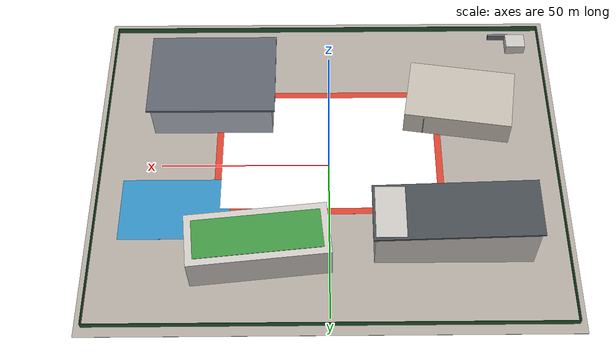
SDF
<?xml version="1.0" ?>
<sdf version="1.8">
  <model name="guanpu_elementary_school">
    <static>true</static>
    <link name="school_link">

      <!-- ==================== 物理碰撞剛體 (校舍主體、體育館與校門守衛室) ==================== -->
      <!-- 教學大樓 A 棟 (4層樓, 45m x 16m x 15m) -->
      <collision name="bldg_a_col">
        <pose>-35.0 25.0 7.5 0 0 0</pose>
        <geometry><box><size>45.0 16.0 15.0</size></box></geometry>
      </collision>

      <!-- 教學大樓 B 棟 (3層樓, 40m x 16m x 12m) -->
      <collision name="bldg_b_col">
        <pose>20.0 30.0 6.0 0 0 0.1</pose>
        <geometry><box><size>40.0 16.0 12.0</size></box></geometry>
      </collision>

      <!-- 行政圖書資訊中心 (2層樓有機聚落, 32m x 20m x 8.5m) -->
      <collision name="admin_lib_col">
        <pose>-40.0 -20.0 4.25 0 0 -0.15</pose>
        <geometry><box><size>32.0 20.0 8.5</size></box></geometry>
      </collision>

      <!-- 多功能活動中心 / 室內體育館 (挑高12m, 36m x 26m x 12m) -->
      <collision name="gym_col">
        <pose>35.0 -25.0 6.0 0 0 0</pose>
        <geometry><box><size>36.0 26.0 12.0</size></box></geometry>
      </collision>

      <!-- 校門警衛傳達室 (1層樓, 6m x 5m x 3.5m) -->
      <collision name="gatehouse_col">
        <pose>-60.0 -45.0 1.75 0 0 0</pose>
        <geometry><box><size>6.0 5.0 3.5</size></box></geometry>
      </collision>

      <!-- ==================== 校園大底地坪 (Campus Ground Surface 140m x 110m) ==================== -->
      <visual name="campus_ground_vis">
        <pose>0 0 0.04 0 0 0</pose>
        <geometry><box><size>140.0 110.0 0.08</size></box></geometry>
        <material>
          <ambient>0.60 0.58 0.55 1</ambient>
          <diffuse>0.68 0.65 0.62 1</diffuse>
        </material>
      </visual>

      <!-- ==================== 操場運動場與跑道系統 (200m Athletic Track & Field) ==================== -->
      <!-- 200m 紅色 PU 橢圓跑道區 (Red Tartan Running Track: 65m x 42m) -->
      <visual name="track_oval_vis">
        <pose>0 -5.0 0.085 0 0 0</pose>
        <geometry><box><size>68.0 44.0 0.01</size></box></geometry>
        <material>
          <ambient>0.75 0.20 0.15 1</ambient>
          <diffuse>0.85 0.25 0.18 1</diffuse>
        </material>
      </visual>

      <!-- 操場中央天然草皮足球場/多功能活動草坪 (Center Grass Lawn: 52m x 28m) -->
      <visual name="center_pitch_vis">
        <pose>0 -5.0 0.092 0 0 0</pose>
        <geometry><box><size>52.0 28.0 0.01</size></box></geometry>
        <material>
          <ambient>0.18 0.58 0.22 1</ambient>
          <diffuse>0.22 0.65 0.25 1</diffuse>
        </material>
      </visual>

      <!-- 跑道白色分道標線 (White Lane Striping) -->
      <visual name="track_line_outer">
        <pose>0 -5.0 0.095 0 0 0</pose>
        <geometry><box><size>64.0 40.0 0.005</size></box></geometry>
        <material><ambient>0.95 0.95 0.95 1</ambient><diffuse>0.98 0.98 0.98 1</diffuse></material>
      </visual>

      <!-- 戶外綜合籃球與排球場 (Outdoor Courts: 32m x 20m 藍綠雙色抗磨面層) -->
      <visual name="court_vis">
        <pose>45.0 15.0 0.085 0 0 0</pose>
        <geometry><box><size>32.0 20.0 0.01</size></box></geometry>
        <material>
          <ambient>0.15 0.45 0.65 1</ambient>
          <diffuse>0.20 0.55 0.75 1</diffuse>
        </material>
      </visual>

      <!-- ==================== 有機聚落式校舍建築群 (Modern Organic Schoolhouses) ==================== -->
      <!-- 教學大樓 A 棟主體 (清水模基調) -->
      <visual name="bldg_a_main">
        <pose>-35.0 25.0 7.5 0 0 0</pose>
        <geometry><box><size>45.0 16.0 15.0</size></box></geometry>
        <material>
          <ambient>0.72 0.70 0.68 1</ambient>
          <diffuse>0.78 0.76 0.74 1</diffuse>
        </material>
      </visual>

      <!-- 教學大樓 A 棟南向木紋垂直遮陽格柵 (Warm Timber Slats - 田中央建築標誌語彙) -->
      <visual name="bldg_a_louvers">
        <pose>-35.0 16.8 8.0 0 0 0</pose>
        <geometry><box><size>42.0 0.3 12.0</size></box></geometry>
        <material>
          <ambient>0.52 0.32 0.16 1</ambient>
          <diffuse>0.62 0.40 0.22 1</diffuse>
        </material>
      </visual>

      <!-- 斜面黑鐵色金屬折板屋頂 (Standing Seam Metal Roof) -->
      <visual name="bldg_a_roof">
        <pose>-35.0 25.0 15.4 0 0.05 0</pose>
        <geometry><box><size>46.5 17.5 0.6</size></box></geometry>
        <material>
          <ambient>0.22 0.24 0.26 1</ambient>
          <diffuse>0.28 0.30 0.32 1</diffuse>
        </material>
      </visual>

      <!-- 教學大樓 B 棟主體 (3層樓) -->
      <visual name="bldg_b_main">
        <pose>20.0 30.0 6.0 0 0 0.1</pose>
        <geometry><box><size>40.0 16.0 12.0</size></box></geometry>
        <material>
          <ambient>0.74 0.72 0.70 1</ambient>
          <diffuse>0.80 0.78 0.76 1</diffuse>
        </material>
      </visual>

      <visual name="bldg_b_louvers">
        <pose>20.0 21.8 6.5 0 0 0.1</pose>
        <geometry><box><size>36.0 0.3 9.0</size></box></geometry>
        <material>
          <ambient>0.52 0.32 0.16 1</ambient>
          <diffuse>0.62 0.40 0.22 1</diffuse>
        </material>
      </visual>

      <!-- 頂樓綠化戶外教學景觀露台 (Rooftop Green Terrace) -->
      <visual name="bldg_b_terrace">
        <pose>20.0 30.0 12.1 0 0 0.1</pose>
        <geometry><box><size>36.0 12.0 0.15</size></box></geometry>
        <material><ambient>0.2 0.5 0.22 1</ambient><diffuse>0.25 0.58 0.26 1</diffuse></material>
      </visual>

      <!-- 行政與圖書館大樓 (低矮聚落 2層樓) -->
      <visual name="admin_main">
        <pose>-40.0 -20.0 4.25 0 0 -0.15</pose>
        <geometry><box><size>32.0 20.0 8.5</size></box></geometry>
        <material>
          <ambient>0.68 0.65 0.62 1</ambient>
          <diffuse>0.75 0.72 0.68 1</diffuse>
        </material>
      </visual>

      <!-- 圖書館大面採光落地玻璃帷幕 -->
      <visual name="lib_glass">
        <pose>-29.8 -20.0 4.2 0 0 -0.15</pose>
        <geometry><box><size>0.2 18.0 7.0</size></box></geometry>
        <material>
          <ambient>0.2 0.4 0.5 0.8</ambient>
          <diffuse>0.25 0.45 0.55 0.8</diffuse>
          <specular>0.8 0.85 0.9 1</specular>
        </material>
      </visual>

      <!-- 室內多功能體育館 (Gymnasium Hall) -->
      <visual name="gym_main">
        <pose>35.0 -25.0 6.0 0 0 0</pose>
        <geometry><box><size>36.0 26.0 12.0</size></box></geometry>
        <material>
          <ambient>0.65 0.67 0.70 1</ambient>
          <diffuse>0.72 0.74 0.77 1</diffuse>
        </material>
      </visual>

      <visual name="gym_barrel_roof">
        <pose>35.0 -25.0 12.5 0 0 0</pose>
        <geometry><box><size>38.0 28.0 0.8</size></box></geometry>
        <material><ambient>0.3 0.32 0.35 1</ambient><diffuse>0.36 0.38 0.42 1</diffuse></material>
      </visual>

      <!-- ==================== 校門與四周穿透式金屬格柵圍牆 (Gate & Perimeter Fence) ==================== -->
      <!-- 校門警衛室 -->
      <visual name="gatehouse_vis">
        <pose>-60.0 -45.0 1.75 0 0 0</pose>
        <geometry><box><size>6.0 5.0 3.5</size></box></geometry>
        <material><ambient>0.72 0.70 0.68 1</ambient><diffuse>0.78 0.76 0.74 1</diffuse></material>
      </visual>

      <!-- 正門校名石碑 (School Name Monument) -->
      <!-- 銘刻「新竹市立關埔國民小學」金字銘牌 -->
      <visual name="school_name_monument">
        <pose>-55.0 -48.5 1.0 0 0 0</pose>
        <geometry><box><size>6.5 0.8 2.0</size></box></geometry>
        <material><ambient>0.35 0.35 0.38 1</ambient><diffuse>0.42 0.42 0.45 1</diffuse></material>
      </visual>
      <visual name="school_name_gold_letters">
        <pose>-55.0 -48.95 1.1 0 0 0</pose>
        <geometry><box><size>5.8 0.05 0.8</size></box></geometry>
        <material><ambient>0.85 0.75 0.1 1</ambient><diffuse>0.95 0.82 0.12 1</diffuse><emissive>0.4 0.3 0.05 1</emissive></material>
      </visual>

      <!-- 校園穿透式深墨綠金屬格柵圍牆 (Permeable Perimeter Fence: 高 2.2m) -->
      <!-- 南側圍牆 -->
      <visual name="fence_south"><pose>0 -52.0 1.1 0 0 0</pose><geometry><box><size>136.0 0.15 2.2</size></box></geometry><material><ambient>0.12 0.28 0.15 1</ambient><diffuse>0.16 0.35 0.20 1</diffuse></material></visual>
      <!-- 北側圍牆 -->
      <visual name="fence_north"><pose>0 52.0 1.1 0 0 0</pose><geometry><box><size>136.0 0.15 2.2</size></box></geometry><material><ambient>0.12 0.28 0.15 1</ambient><diffuse>0.16 0.35 0.20 1</diffuse></material></visual>
      <!-- 西側圍牆 -->
      <visual name="fence_west"><pose>-68.0 0 1.1 0 0 0</pose><geometry><box><size>0.15 104.0 2.2</size></box></geometry><material><ambient>0.12 0.28 0.15 1</ambient><diffuse>0.16 0.35 0.20 1</diffuse></material></visual>
      <!-- 東側圍牆 -->
      <visual name="fence_east"><pose>68.0 0 1.1 0 0 0</pose><geometry><box><size>0.15 104.0 2.2</size></box></geometry><material><ambient>0.12 0.28 0.15 1</ambient><diffuse>0.16 0.35 0.20 1</diffuse></material></visual>

    </link>
  </model>
</sdf>
